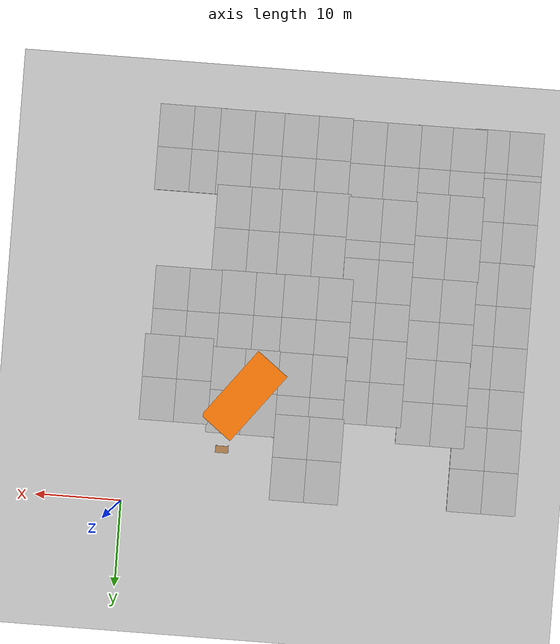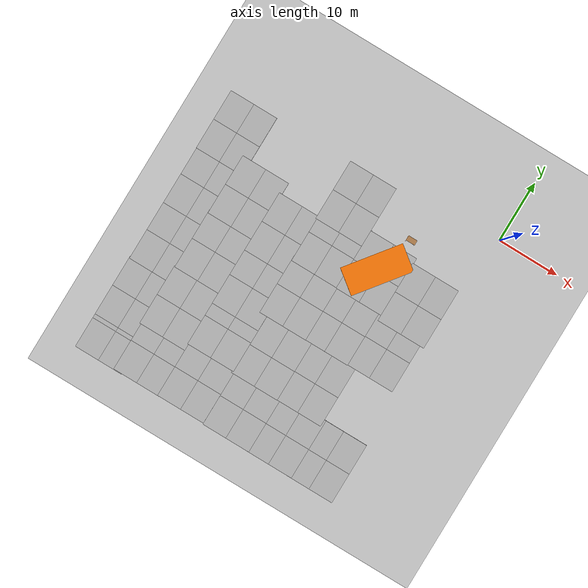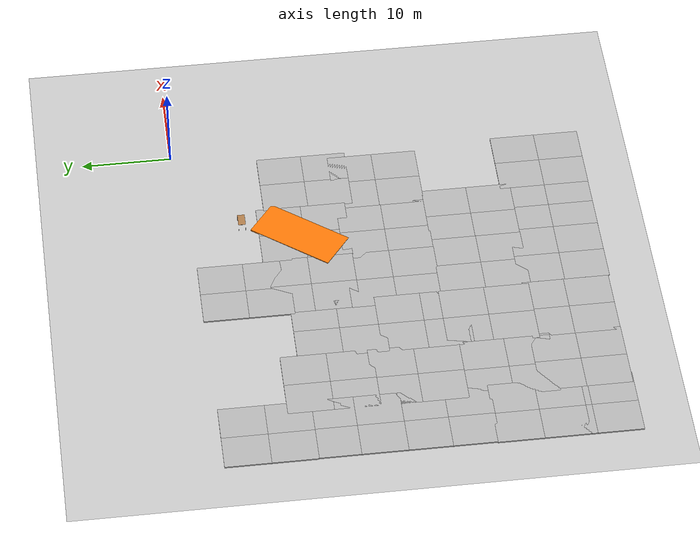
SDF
<sdf version="1.5">
 <world name="default">
  <model name="ground_plane">
   <static>1</static>
   <link name="link">
    <collision name="collision">
     <geometry><plane><normal>0 0 1</normal><size>100 100</size></plane></geometry>
     <surface><friction><ode><mu>100</mu><mu2>50</mu2></ode></friction></surface>
    </collision>
    <visual name="visual">
     <cast_shadows>0</cast_shadows>
     <geometry><plane><normal>0 0 1</normal><size>100 100</size></plane></geometry>
     <material>
      <script><uri>file://media/materials/scripts/gazebo.material</uri><name>Gazebo/Grey</name></script>
     </material>
    </visual>
   </link>
  </model>
  <model name="mud_box_1">
   <static>1</static>
   <link name="link">
    <collision name="collision"><geometry><box><size>8 10 0.2</size></box></geometry></collision>
    <visual name="visual_1">
     <pose>-2 2.5 0 0 -0 0</pose>
     <cast_shadows>0</cast_shadows>
     <geometry><box><size>4 5 0.2</size></box></geometry>
     <material>
      <script>
       <uri>model://mud_box/materials/scripts</uri>
       <uri>model://mud_box/materials/textures</uri>
       <name>vrc/mud</name>
      </script>
     </material>
    </visual>
    <visual name="visual_2">
     <pose>2 2.5 0 0 -0 0</pose>
     <cast_shadows>0</cast_shadows>
     <geometry><box><size>4 5 0.2</size></box></geometry>
     <material>
      <script>
       <uri>model://mud_box/materials/scripts</uri>
       <uri>model://mud_box/materials/textures</uri>
       <name>vrc/mud</name>
      </script>
     </material>
    </visual>
    <visual name="visual_3">
     <pose>2 -2.5 0 0 -0 0</pose>
     <cast_shadows>0</cast_shadows>
     <geometry><box><size>4 5 0.2</size></box></geometry>
     <material>
      <script>
       <uri>model://mud_box/materials/scripts</uri>
       <uri>model://mud_box/materials/textures</uri>
       <name>vrc/mud</name>
      </script>
     </material>
    </visual>
    <visual name="visual_4">
     <pose>-2 -2.5 0 0 -0 0</pose>
     <cast_shadows>0</cast_shadows>
     <geometry><box><size>4 5 0.2</size></box></geometry>
     <material>
      <script>
       <uri>model://mud_box/materials/scripts</uri>
       <uri>model://mud_box/materials/textures</uri>
       <name>vrc/mud</name>
      </script>
     </material>
    </visual>
   </link>
   <pose>-5.37597 -14.6349 0 0 -0 0</pose>
  </model>
  <model name="mud_box_9">
   <static>1</static>
   <link name="link">
    <collision name="collision"><geometry><box><size>8 10 0.2</size></box></geometry></collision>
    <visual name="visual_1">
     <pose>-2 2.5 0 0 -0 0</pose>
     <cast_shadows>0</cast_shadows>
     <geometry><box><size>4 5 0.2</size></box></geometry>
     <material>
      <script>
       <uri>model://mud_box/materials/scripts</uri>
       <uri>model://mud_box/materials/textures</uri>
       <name>vrc/mud</name>
      </script>
     </material>
    </visual>
    <visual name="visual_2">
     <pose>2 2.5 0 0 -0 0</pose>
     <cast_shadows>0</cast_shadows>
     <geometry><box><size>4 5 0.2</size></box></geometry>
     <material>
      <script>
       <uri>model://mud_box/materials/scripts</uri>
       <uri>model://mud_box/materials/textures</uri>
       <name>vrc/mud</name>
      </script>
     </material>
    </visual>
    <visual name="visual_3">
     <pose>2 -2.5 0 0 -0 0</pose>
     <cast_shadows>0</cast_shadows>
     <geometry><box><size>4 5 0.2</size></box></geometry>
     <material>
      <script>
       <uri>model://mud_box/materials/scripts</uri>
       <uri>model://mud_box/materials/textures</uri>
       <name>vrc/mud</name>
      </script>
     </material>
    </visual>
    <visual name="visual_4">
     <pose>-2 -2.5 0 0 -0 0</pose>
     <cast_shadows>0</cast_shadows>
     <geometry><box><size>4 5 0.2</size></box></geometry>
     <material>
      <script>
       <uri>model://mud_box/materials/scripts</uri>
       <uri>model://mud_box/materials/textures</uri>
       <name>vrc/mud</name>
      </script>
     </material>
    </visual>
   </link>
   <pose>-13.1885 -13.7453 0 0 -0 0</pose>
  </model>
  <model name="wall_1">
   <pose>-11.618 -14.6108 0.054009 -0.653823 -1.56052 7.4e-05</pose>
   <link name="Wall_0">
    <collision name="Wall_0_Collision">
     <geometry><box><size>10 0.15 4.5</size></box></geometry>
     <pose>0 0 2.25 0 -0 0</pose>
    </collision>
    <visual name="Wall_0_Visual">
     <pose>0 0 2.25 0 -0 0</pose>
     <geometry><box><size>10 0.15 4.5</size></box></geometry>
     <material>
      <script>
       <uri>model://wall/materials/scripts</uri>
       <uri>model://wall/materials/textures</uri>
       <name>Wall/NiceWall</name>
      </script>
      <ambient>0.996078 0.47451 0.0196078 1</ambient>
     </material>
    </visual>
    <pose>0 -0 0 0 0 -1.5708</pose>
   </link>
   <static>1</static>
  </model>
  <model name="table">
   <static>1</static>
   <link name="link">
    <collision name="surface">
     <pose>0 0 1 0 -0 0</pose>
     <geometry><box><size>1.5 0.8 0.03</size></box></geometry>
     <surface><friction><ode><mu>0.6</mu><mu2>0.6</mu2></ode></friction></surface>
    </collision>
    <visual name="visual1">
     <pose>0 0 1 0 -0 0</pose>
     <geometry><box><size>1.5 0.8 0.03</size></box></geometry>
     <material>
      <script><uri>file://media/materials/scripts/gazebo.material</uri><name>Gazebo/Wood</name></script>
     </material>
    </visual>
    <collision name="front_left_leg">
     <pose>0.68 0.38 0.5 0 -0 0</pose>
     <geometry><cylinder><radius>0.02</radius><length>1</length></cylinder></geometry>
    </collision>
    <visual name="front_left_leg">
     <pose>0.68 0.38 0.5 0 -0 0</pose>
     <geometry><cylinder><radius>0.02</radius><length>1</length></cylinder></geometry>
     <material>
      <script><uri>file://media/materials/scripts/gazebo.material</uri><name>Gazebo/Grey</name></script>
     </material>
    </visual>
    <collision name="front_right_leg">
     <pose>0.68 -0.38 0.5 0 -0 0</pose>
     <geometry><cylinder><radius>0.02</radius><length>1</length></cylinder></geometry>
    </collision>
    <visual name="front_right_leg">
     <pose>0.68 -0.38 0.5 0 -0 0</pose>
     <geometry><cylinder><radius>0.02</radius><length>1</length></cylinder></geometry>
     <material>
      <script><uri>file://media/materials/scripts/gazebo.material</uri><name>Gazebo/Grey</name></script>
     </material>
    </visual>
    <collision name="back_right_leg">
     <pose>-0.68 -0.38 0.5 0 -0 0</pose>
     <geometry><cylinder><radius>0.02</radius><length>1</length></cylinder></geometry>
    </collision>
    <visual name="back_right_leg">
     <pose>-0.68 -0.38 0.5 0 -0 0</pose>
     <geometry><cylinder><radius>0.02</radius><length>1</length></cylinder></geometry>
     <material>
      <script><uri>file://media/materials/scripts/gazebo.material</uri><name>Gazebo/Grey</name></script>
     </material>
    </visual>
    <collision name="back_left_leg">
     <pose>-0.68 0.38 0.5 0 -0 0</pose>
     <geometry><cylinder><radius>0.02</radius><length>1</length></cylinder></geometry>
    </collision>
    <visual name="back_left_leg">
     <pose>-0.68 0.38 0.5 0 -0 0</pose>
     <geometry><cylinder><radius>0.02</radius><length>1</length></cylinder></geometry>
     <material>
      <script><uri>file://media/materials/scripts/gazebo.material</uri><name>Gazebo/Grey</name></script>
     </material>
    </visual>
   </link>
   <pose>-11.3262 -6.97566 0 0 -0 0</pose>
  </model>
  <model name="mud_box_17">
   <static>1</static>
   <link name="link">
    <collision name="collision"><geometry><box><size>8 10 0.2</size></box></geometry></collision>
    <visual name="visual_1">
     <pose>-2 2.5 0 0 -0 0</pose>
     <cast_shadows>0</cast_shadows>
     <geometry><box><size>4 5 0.2</size></box></geometry>
     <material>
      <script>
       <uri>model://mud_box/materials/scripts</uri>
       <uri>model://mud_box/materials/textures</uri>
       <name>vrc/mud</name>
      </script>
     </material>
    </visual>
    <visual name="visual_2">
     <pose>2 2.5 0 0 -0 0</pose>
     <cast_shadows>0</cast_shadows>
     <geometry><box><size>4 5 0.2</size></box></geometry>
     <material>
      <script>
       <uri>model://mud_box/materials/scripts</uri>
       <uri>model://mud_box/materials/textures</uri>
       <name>vrc/mud</name>
      </script>
     </material>
    </visual>
    <visual name="visual_3">
     <pose>2 -2.5 0 0 -0 0</pose>
     <cast_shadows>0</cast_shadows>
     <geometry><box><size>4 5 0.2</size></box></geometry>
     <material>
      <script>
       <uri>model://mud_box/materials/scripts</uri>
       <uri>model://mud_box/materials/textures</uri>
       <name>vrc/mud</name>
      </script>
     </material>
    </visual>
    <visual name="visual_4">
     <pose>-2 -2.5 0 0 -0 0</pose>
     <cast_shadows>0</cast_shadows>
     <geometry><box><size>4 5 0.2</size></box></geometry>
     <material>
      <script>
       <uri>model://mud_box/materials/scripts</uri>
       <uri>model://mud_box/materials/textures</uri>
       <name>vrc/mud</name>
      </script>
     </material>
    </visual>
   </link>
   <pose>-21.1882 -6.44237 0 0 -0 0</pose>
  </model>
  <model name="mud_box_18">
   <static>1</static>
   <link name="link">
    <collision name="collision"><geometry><box><size>8 10 0.2</size></box></geometry></collision>
    <visual name="visual_1">
     <pose>-2 2.5 0 0 -0 0</pose>
     <cast_shadows>0</cast_shadows>
     <geometry><box><size>4 5 0.2</size></box></geometry>
     <material>
      <script>
       <uri>model://mud_box/materials/scripts</uri>
       <uri>model://mud_box/materials/textures</uri>
       <name>vrc/mud</name>
      </script>
     </material>
    </visual>
    <visual name="visual_2">
     <pose>2 2.5 0 0 -0 0</pose>
     <cast_shadows>0</cast_shadows>
     <geometry><box><size>4 5 0.2</size></box></geometry>
     <material>
      <script>
       <uri>model://mud_box/materials/scripts</uri>
       <uri>model://mud_box/materials/textures</uri>
       <name>vrc/mud</name>
      </script>
     </material>
    </visual>
    <visual name="visual_3">
     <pose>2 -2.5 0 0 -0 0</pose>
     <cast_shadows>0</cast_shadows>
     <geometry><box><size>4 5 0.2</size></box></geometry>
     <material>
      <script>
       <uri>model://mud_box/materials/scripts</uri>
       <uri>model://mud_box/materials/textures</uri>
       <name>vrc/mud</name>
      </script>
     </material>
    </visual>
    <visual name="visual_4">
     <pose>-2 -2.5 0 0 -0 0</pose>
     <cast_shadows>0</cast_shadows>
     <geometry><box><size>4 5 0.2</size></box></geometry>
     <material>
      <script>
       <uri>model://mud_box/materials/scripts</uri>
       <uri>model://mud_box/materials/textures</uri>
       <name>vrc/mud</name>
      </script>
     </material>
    </visual>
   </link>
   <pose>-20.9947 -13.6813 0 0 -0 0</pose>
  </model>
  <model name="mud_box_34">
   <static>1</static>
   <link name="link">
    <collision name="collision"><geometry><box><size>8 10 0.2</size></box></geometry></collision>
    <visual name="visual_1">
     <pose>-2 2.5 0 0 -0 0</pose>
     <cast_shadows>0</cast_shadows>
     <geometry><box><size>4 5 0.2</size></box></geometry>
     <material>
      <script>
       <uri>model://mud_box/materials/scripts</uri>
       <uri>model://mud_box/materials/textures</uri>
       <name>vrc/mud</name>
      </script>
     </material>
    </visual>
    <visual name="visual_2">
     <pose>2 2.5 0 0 -0 0</pose>
     <cast_shadows>0</cast_shadows>
     <geometry><box><size>4 5 0.2</size></box></geometry>
     <material>
      <script>
       <uri>model://mud_box/materials/scripts</uri>
       <uri>model://mud_box/materials/textures</uri>
       <name>vrc/mud</name>
      </script>
     </material>
    </visual>
    <visual name="visual_3">
     <pose>2 -2.5 0 0 -0 0</pose>
     <cast_shadows>0</cast_shadows>
     <geometry><box><size>4 5 0.2</size></box></geometry>
     <material>
      <script>
       <uri>model://mud_box/materials/scripts</uri>
       <uri>model://mud_box/materials/textures</uri>
       <name>vrc/mud</name>
      </script>
     </material>
    </visual>
    <visual name="visual_4">
     <pose>-2 -2.5 0 0 -0 0</pose>
     <cast_shadows>0</cast_shadows>
     <geometry><box><size>4 5 0.2</size></box></geometry>
     <material>
      <script>
       <uri>model://mud_box/materials/scripts</uri>
       <uri>model://mud_box/materials/textures</uri>
       <name>vrc/mud</name>
      </script>
     </material>
    </visual>
   </link>
   <pose>-21.0368 -22.7308 0 0 -0 0</pose>
  </model>
  <model name="mud_box_35">
   <static>1</static>
   <link name="link">
    <collision name="collision"><geometry><box><size>8 10 0.2</size></box></geometry></collision>
    <visual name="visual_1">
     <pose>-2 2.5 0 0 -0 0</pose>
     <cast_shadows>0</cast_shadows>
     <geometry><box><size>4 5 0.2</size></box></geometry>
     <material>
      <script>
       <uri>model://mud_box/materials/scripts</uri>
       <uri>model://mud_box/materials/textures</uri>
       <name>vrc/mud</name>
      </script>
     </material>
    </visual>
    <visual name="visual_2">
     <pose>2 2.5 0 0 -0 0</pose>
     <cast_shadows>0</cast_shadows>
     <geometry><box><size>4 5 0.2</size></box></geometry>
     <material>
      <script>
       <uri>model://mud_box/materials/scripts</uri>
       <uri>model://mud_box/materials/textures</uri>
       <name>vrc/mud</name>
      </script>
     </material>
    </visual>
    <visual name="visual_3">
     <pose>2 -2.5 0 0 -0 0</pose>
     <cast_shadows>0</cast_shadows>
     <geometry><box><size>4 5 0.2</size></box></geometry>
     <material>
      <script>
       <uri>model://mud_box/materials/scripts</uri>
       <uri>model://mud_box/materials/textures</uri>
       <name>vrc/mud</name>
      </script>
     </material>
    </visual>
    <visual name="visual_4">
     <pose>-2 -2.5 0 0 -0 0</pose>
     <cast_shadows>0</cast_shadows>
     <geometry><box><size>4 5 0.2</size></box></geometry>
     <material>
      <script>
       <uri>model://mud_box/materials/scripts</uri>
       <uri>model://mud_box/materials/textures</uri>
       <name>vrc/mud</name>
      </script>
     </material>
    </visual>
   </link>
   <pose>-13.7492 -22.6999 0 0 -0 0</pose>
  </model>
  <model name="mud_box_36">
   <static>1</static>
   <link name="link">
    <collision name="collision"><geometry><box><size>8 10 0.2</size></box></geometry></collision>
    <visual name="visual_1">
     <pose>-2 2.5 0 0 -0 0</pose>
     <cast_shadows>0</cast_shadows>
     <geometry><box><size>4 5 0.2</size></box></geometry>
     <material>
      <script>
       <uri>model://mud_box/materials/scripts</uri>
       <uri>model://mud_box/materials/textures</uri>
       <name>vrc/mud</name>
      </script>
     </material>
    </visual>
    <visual name="visual_2">
     <pose>2 2.5 0 0 -0 0</pose>
     <cast_shadows>0</cast_shadows>
     <geometry><box><size>4 5 0.2</size></box></geometry>
     <material>
      <script>
       <uri>model://mud_box/materials/scripts</uri>
       <uri>model://mud_box/materials/textures</uri>
       <name>vrc/mud</name>
      </script>
     </material>
    </visual>
    <visual name="visual_3">
     <pose>2 -2.5 0 0 -0 0</pose>
     <cast_shadows>0</cast_shadows>
     <geometry><box><size>4 5 0.2</size></box></geometry>
     <material>
      <script>
       <uri>model://mud_box/materials/scripts</uri>
       <uri>model://mud_box/materials/textures</uri>
       <name>vrc/mud</name>
      </script>
     </material>
    </visual>
    <visual name="visual_4">
     <pose>-2 -2.5 0 0 -0 0</pose>
     <cast_shadows>0</cast_shadows>
     <geometry><box><size>4 5 0.2</size></box></geometry>
     <material>
      <script>
       <uri>model://mud_box/materials/scripts</uri>
       <uri>model://mud_box/materials/textures</uri>
       <name>vrc/mud</name>
      </script>
     </material>
    </visual>
   </link>
   <pose>-6.00686 -22.6178 0 0 -0 0</pose>
  </model>
  <model name="mud_box_45">
   <static>1</static>
   <link name="link">
    <collision name="collision"><geometry><box><size>8 10 0.2</size></box></geometry></collision>
    <visual name="visual_1">
     <pose>-2 2.5 0 0 -0 0</pose>
     <cast_shadows>0</cast_shadows>
     <geometry><box><size>4 5 0.2</size></box></geometry>
     <material>
      <script>
       <uri>model://mud_box/materials/scripts</uri>
       <uri>model://mud_box/materials/textures</uri>
       <name>vrc/mud</name>
      </script>
     </material>
    </visual>
    <visual name="visual_2">
     <pose>2 2.5 0 0 -0 0</pose>
     <cast_shadows>0</cast_shadows>
     <geometry><box><size>4 5 0.2</size></box></geometry>
     <material>
      <script>
       <uri>model://mud_box/materials/scripts</uri>
       <uri>model://mud_box/materials/textures</uri>
       <name>vrc/mud</name>
      </script>
     </material>
    </visual>
    <visual name="visual_3">
     <pose>2 -2.5 0 0 -0 0</pose>
     <cast_shadows>0</cast_shadows>
     <geometry><box><size>4 5 0.2</size></box></geometry>
     <material>
      <script>
       <uri>model://mud_box/materials/scripts</uri>
       <uri>model://mud_box/materials/textures</uri>
       <name>vrc/mud</name>
      </script>
     </material>
    </visual>
    <visual name="visual_4">
     <pose>-2 -2.5 0 0 -0 0</pose>
     <cast_shadows>0</cast_shadows>
     <geometry><box><size>4 5 0.2</size></box></geometry>
     <material>
      <script>
       <uri>model://mud_box/materials/scripts</uri>
       <uri>model://mud_box/materials/textures</uri>
       <name>vrc/mud</name>
      </script>
     </material>
    </visual>
   </link>
   <pose>-27.7922 -15.9741 0 0 -0 0</pose>
  </model>
  <model name="mud_box_46">
   <static>1</static>
   <link name="link">
    <collision name="collision"><geometry><box><size>8 10 0.2</size></box></geometry></collision>
    <visual name="visual_1">
     <pose>-2 2.5 0 0 -0 0</pose>
     <cast_shadows>0</cast_shadows>
     <geometry><box><size>4 5 0.2</size></box></geometry>
     <material>
      <script>
       <uri>model://mud_box/materials/scripts</uri>
       <uri>model://mud_box/materials/textures</uri>
       <name>vrc/mud</name>
      </script>
     </material>
    </visual>
    <visual name="visual_2">
     <pose>2 2.5 0 0 -0 0</pose>
     <cast_shadows>0</cast_shadows>
     <geometry><box><size>4 5 0.2</size></box></geometry>
     <material>
      <script>
       <uri>model://mud_box/materials/scripts</uri>
       <uri>model://mud_box/materials/textures</uri>
       <name>vrc/mud</name>
      </script>
     </material>
    </visual>
    <visual name="visual_3">
     <pose>2 -2.5 0 0 -0 0</pose>
     <cast_shadows>0</cast_shadows>
     <geometry><box><size>4 5 0.2</size></box></geometry>
     <material>
      <script>
       <uri>model://mud_box/materials/scripts</uri>
       <uri>model://mud_box/materials/textures</uri>
       <name>vrc/mud</name>
      </script>
     </material>
    </visual>
    <visual name="visual_4">
     <pose>-2 -2.5 0 0 -0 0</pose>
     <cast_shadows>0</cast_shadows>
     <geometry><box><size>4 5 0.2</size></box></geometry>
     <material>
      <script>
       <uri>model://mud_box/materials/scripts</uri>
       <uri>model://mud_box/materials/textures</uri>
       <name>vrc/mud</name>
      </script>
     </material>
    </visual>
   </link>
   <pose>-27.7934 -25.2342 0 0 -0 0</pose>
  </model>
  <model name="mud_box_47">
   <static>1</static>
   <link name="link">
    <collision name="collision"><geometry><box><size>8 10 0.2</size></box></geometry></collision>
    <visual name="visual_1">
     <pose>-2 2.5 0 0 -0 0</pose>
     <cast_shadows>0</cast_shadows>
     <geometry><box><size>4 5 0.2</size></box></geometry>
     <material>
      <script>
       <uri>model://mud_box/materials/scripts</uri>
       <uri>model://mud_box/materials/textures</uri>
       <name>vrc/mud</name>
      </script>
     </material>
    </visual>
    <visual name="visual_2">
     <pose>2 2.5 0 0 -0 0</pose>
     <cast_shadows>0</cast_shadows>
     <geometry><box><size>4 5 0.2</size></box></geometry>
     <material>
      <script>
       <uri>model://mud_box/materials/scripts</uri>
       <uri>model://mud_box/materials/textures</uri>
       <name>vrc/mud</name>
      </script>
     </material>
    </visual>
    <visual name="visual_3">
     <pose>2 -2.5 0 0 -0 0</pose>
     <cast_shadows>0</cast_shadows>
     <geometry><box><size>4 5 0.2</size></box></geometry>
     <material>
      <script>
       <uri>model://mud_box/materials/scripts</uri>
       <uri>model://mud_box/materials/textures</uri>
       <name>vrc/mud</name>
      </script>
     </material>
    </visual>
    <visual name="visual_4">
     <pose>-2 -2.5 0 0 -0 0</pose>
     <cast_shadows>0</cast_shadows>
     <geometry><box><size>4 5 0.2</size></box></geometry>
     <material>
      <script>
       <uri>model://mud_box/materials/scripts</uri>
       <uri>model://mud_box/materials/textures</uri>
       <name>vrc/mud</name>
      </script>
     </material>
    </visual>
   </link>
   <pose>-27.7731 -32.3247 0 0 -0 0</pose>
  </model>
  <model name="mud_box_48">
   <static>1</static>
   <link name="link">
    <collision name="collision"><geometry><box><size>8 10 0.2</size></box></geometry></collision>
    <visual name="visual_1">
     <pose>-2 2.5 0 0 -0 0</pose>
     <cast_shadows>0</cast_shadows>
     <geometry><box><size>4 5 0.2</size></box></geometry>
     <material>
      <script>
       <uri>model://mud_box/materials/scripts</uri>
       <uri>model://mud_box/materials/textures</uri>
       <name>vrc/mud</name>
      </script>
     </material>
    </visual>
    <visual name="visual_2">
     <pose>2 2.5 0 0 -0 0</pose>
     <cast_shadows>0</cast_shadows>
     <geometry><box><size>4 5 0.2</size></box></geometry>
     <material>
      <script>
       <uri>model://mud_box/materials/scripts</uri>
       <uri>model://mud_box/materials/textures</uri>
       <name>vrc/mud</name>
      </script>
     </material>
    </visual>
    <visual name="visual_3">
     <pose>2 -2.5 0 0 -0 0</pose>
     <cast_shadows>0</cast_shadows>
     <geometry><box><size>4 5 0.2</size></box></geometry>
     <material>
      <script>
       <uri>model://mud_box/materials/scripts</uri>
       <uri>model://mud_box/materials/textures</uri>
       <name>vrc/mud</name>
      </script>
     </material>
    </visual>
    <visual name="visual_4">
     <pose>-2 -2.5 0 0 -0 0</pose>
     <cast_shadows>0</cast_shadows>
     <geometry><box><size>4 5 0.2</size></box></geometry>
     <material>
      <script>
       <uri>model://mud_box/materials/scripts</uri>
       <uri>model://mud_box/materials/textures</uri>
       <name>vrc/mud</name>
      </script>
     </material>
    </visual>
   </link>
   <pose>-19.9979 -32.5855 0 0 -0 0</pose>
  </model>
  <model name="mud_box_49">
   <static>1</static>
   <link name="link">
    <collision name="collision"><geometry><box><size>8 10 0.2</size></box></geometry></collision>
    <visual name="visual_1">
     <pose>-2 2.5 0 0 -0 0</pose>
     <cast_shadows>0</cast_shadows>
     <geometry><box><size>4 5 0.2</size></box></geometry>
     <material>
      <script>
       <uri>model://mud_box/materials/scripts</uri>
       <uri>model://mud_box/materials/textures</uri>
       <name>vrc/mud</name>
      </script>
     </material>
    </visual>
    <visual name="visual_2">
     <pose>2 2.5 0 0 -0 0</pose>
     <cast_shadows>0</cast_shadows>
     <geometry><box><size>4 5 0.2</size></box></geometry>
     <material>
      <script>
       <uri>model://mud_box/materials/scripts</uri>
       <uri>model://mud_box/materials/textures</uri>
       <name>vrc/mud</name>
      </script>
     </material>
    </visual>
    <visual name="visual_3">
     <pose>2 -2.5 0 0 -0 0</pose>
     <cast_shadows>0</cast_shadows>
     <geometry><box><size>4 5 0.2</size></box></geometry>
     <material>
      <script>
       <uri>model://mud_box/materials/scripts</uri>
       <uri>model://mud_box/materials/textures</uri>
       <name>vrc/mud</name>
      </script>
     </material>
    </visual>
    <visual name="visual_4">
     <pose>-2 -2.5 0 0 -0 0</pose>
     <cast_shadows>0</cast_shadows>
     <geometry><box><size>4 5 0.2</size></box></geometry>
     <material>
      <script>
       <uri>model://mud_box/materials/scripts</uri>
       <uri>model://mud_box/materials/textures</uri>
       <name>vrc/mud</name>
      </script>
     </material>
    </visual>
   </link>
   <pose>-12.4535 -32.5469 0 0 -0 0</pose>
  </model>
  <model name="mud_box_71">
   <static>1</static>
   <link name="link">
    <collision name="collision"><geometry><box><size>8 10 0.2</size></box></geometry></collision>
    <visual name="visual_1">
     <pose>-2 2.5 0 0 -0 0</pose>
     <cast_shadows>0</cast_shadows>
     <geometry><box><size>4 5 0.2</size></box></geometry>
     <material>
      <script>
       <uri>model://mud_box/materials/scripts</uri>
       <uri>model://mud_box/materials/textures</uri>
       <name>vrc/mud</name>
      </script>
     </material>
    </visual>
    <visual name="visual_2">
     <pose>2 2.5 0 0 -0 0</pose>
     <cast_shadows>0</cast_shadows>
     <geometry><box><size>4 5 0.2</size></box></geometry>
     <material>
      <script>
       <uri>model://mud_box/materials/scripts</uri>
       <uri>model://mud_box/materials/textures</uri>
       <name>vrc/mud</name>
      </script>
     </material>
    </visual>
    <visual name="visual_3">
     <pose>2 -2.5 0 0 -0 0</pose>
     <cast_shadows>0</cast_shadows>
     <geometry><box><size>4 5 0.2</size></box></geometry>
     <material>
      <script>
       <uri>model://mud_box/materials/scripts</uri>
       <uri>model://mud_box/materials/textures</uri>
       <name>vrc/mud</name>
      </script>
     </material>
    </visual>
    <visual name="visual_4">
     <pose>-2 -2.5 0 0 -0 0</pose>
     <cast_shadows>0</cast_shadows>
     <geometry><box><size>4 5 0.2</size></box></geometry>
     <material>
      <script>
       <uri>model://mud_box/materials/scripts</uri>
       <uri>model://mud_box/materials/textures</uri>
       <name>vrc/mud</name>
      </script>
     </material>
    </visual>
   </link>
   <pose>-27.6102 -41.2163 0 0 -0 0</pose>
  </model>
  <model name="mud_box_72">
   <static>1</static>
   <link name="link">
    <collision name="collision"><geometry><box><size>8 10 0.2</size></box></geometry></collision>
    <visual name="visual_1">
     <pose>-2 2.5 0 0 -0 0</pose>
     <cast_shadows>0</cast_shadows>
     <geometry><box><size>4 5 0.2</size></box></geometry>
     <material>
      <script>
       <uri>model://mud_box/materials/scripts</uri>
       <uri>model://mud_box/materials/textures</uri>
       <name>vrc/mud</name>
      </script>
     </material>
    </visual>
    <visual name="visual_2">
     <pose>2 2.5 0 0 -0 0</pose>
     <cast_shadows>0</cast_shadows>
     <geometry><box><size>4 5 0.2</size></box></geometry>
     <material>
      <script>
       <uri>model://mud_box/materials/scripts</uri>
       <uri>model://mud_box/materials/textures</uri>
       <name>vrc/mud</name>
      </script>
     </material>
    </visual>
    <visual name="visual_3">
     <pose>2 -2.5 0 0 -0 0</pose>
     <cast_shadows>0</cast_shadows>
     <geometry><box><size>4 5 0.2</size></box></geometry>
     <material>
      <script>
       <uri>model://mud_box/materials/scripts</uri>
       <uri>model://mud_box/materials/textures</uri>
       <name>vrc/mud</name>
      </script>
     </material>
    </visual>
    <visual name="visual_4">
     <pose>-2 -2.5 0 0 -0 0</pose>
     <cast_shadows>0</cast_shadows>
     <geometry><box><size>4 5 0.2</size></box></geometry>
     <material>
      <script>
       <uri>model://mud_box/materials/scripts</uri>
       <uri>model://mud_box/materials/textures</uri>
       <name>vrc/mud</name>
      </script>
     </material>
    </visual>
   </link>
   <pose>-19.6086 -41.3766 0 0 -0 0</pose>
  </model>
  <model name="mud_box_73">
   <static>1</static>
   <link name="link">
    <collision name="collision"><geometry><box><size>8 10 0.2</size></box></geometry></collision>
    <visual name="visual_1">
     <pose>-2 2.5 0 0 -0 0</pose>
     <cast_shadows>0</cast_shadows>
     <geometry><box><size>4 5 0.2</size></box></geometry>
     <material>
      <script>
       <uri>model://mud_box/materials/scripts</uri>
       <uri>model://mud_box/materials/textures</uri>
       <name>vrc/mud</name>
      </script>
     </material>
    </visual>
    <visual name="visual_2">
     <pose>2 2.5 0 0 -0 0</pose>
     <cast_shadows>0</cast_shadows>
     <geometry><box><size>4 5 0.2</size></box></geometry>
     <material>
      <script>
       <uri>model://mud_box/materials/scripts</uri>
       <uri>model://mud_box/materials/textures</uri>
       <name>vrc/mud</name>
      </script>
     </material>
    </visual>
    <visual name="visual_3">
     <pose>2 -2.5 0 0 -0 0</pose>
     <cast_shadows>0</cast_shadows>
     <geometry><box><size>4 5 0.2</size></box></geometry>
     <material>
      <script>
       <uri>model://mud_box/materials/scripts</uri>
       <uri>model://mud_box/materials/textures</uri>
       <name>vrc/mud</name>
      </script>
     </material>
    </visual>
    <visual name="visual_4">
     <pose>-2 -2.5 0 0 -0 0</pose>
     <cast_shadows>0</cast_shadows>
     <geometry><box><size>4 5 0.2</size></box></geometry>
     <material>
      <script>
       <uri>model://mud_box/materials/scripts</uri>
       <uri>model://mud_box/materials/textures</uri>
       <name>vrc/mud</name>
      </script>
     </material>
    </visual>
   </link>
   <pose>-12.1781 -41.3912 0 0 -0 0</pose>
  </model>
  <model name="mud_box_74">
   <static>1</static>
   <link name="link">
    <collision name="collision"><geometry><box><size>8 10 0.2</size></box></geometry></collision>
    <visual name="visual_1">
     <pose>-2 2.5 0 0 -0 0</pose>
     <cast_shadows>0</cast_shadows>
     <geometry><box><size>4 5 0.2</size></box></geometry>
     <material>
      <script>
       <uri>model://mud_box/materials/scripts</uri>
       <uri>model://mud_box/materials/textures</uri>
       <name>vrc/mud</name>
      </script>
     </material>
    </visual>
    <visual name="visual_2">
     <pose>2 2.5 0 0 -0 0</pose>
     <cast_shadows>0</cast_shadows>
     <geometry><box><size>4 5 0.2</size></box></geometry>
     <material>
      <script>
       <uri>model://mud_box/materials/scripts</uri>
       <uri>model://mud_box/materials/textures</uri>
       <name>vrc/mud</name>
      </script>
     </material>
    </visual>
    <visual name="visual_3">
     <pose>2 -2.5 0 0 -0 0</pose>
     <cast_shadows>0</cast_shadows>
     <geometry><box><size>4 5 0.2</size></box></geometry>
     <material>
      <script>
       <uri>model://mud_box/materials/scripts</uri>
       <uri>model://mud_box/materials/textures</uri>
       <name>vrc/mud</name>
      </script>
     </material>
    </visual>
    <visual name="visual_4">
     <pose>-2 -2.5 0 0 -0 0</pose>
     <cast_shadows>0</cast_shadows>
     <geometry><box><size>4 5 0.2</size></box></geometry>
     <material>
      <script>
       <uri>model://mud_box/materials/scripts</uri>
       <uri>model://mud_box/materials/textures</uri>
       <name>vrc/mud</name>
      </script>
     </material>
    </visual>
   </link>
   <pose>-5.10155 -41.4095 0 0 -0 0</pose>
  </model>
  <model name="mud_box_106">
   <static>1</static>
   <link name="link">
    <collision name="collision"><geometry><box><size>8 10 0.2</size></box></geometry></collision>
    <visual name="visual_1">
     <pose>-2 2.5 0 0 -0 0</pose>
     <cast_shadows>0</cast_shadows>
     <geometry><box><size>4 5 0.2</size></box></geometry>
     <material>
      <script>
       <uri>model://mud_box/materials/scripts</uri>
       <uri>model://mud_box/materials/textures</uri>
       <name>vrc/mud</name>
      </script>
     </material>
    </visual>
    <visual name="visual_2">
     <pose>2 2.5 0 0 -0 0</pose>
     <cast_shadows>0</cast_shadows>
     <geometry><box><size>4 5 0.2</size></box></geometry>
     <material>
      <script>
       <uri>model://mud_box/materials/scripts</uri>
       <uri>model://mud_box/materials/textures</uri>
       <name>vrc/mud</name>
      </script>
     </material>
    </visual>
    <visual name="visual_3">
     <pose>2 -2.5 0 0 -0 0</pose>
     <cast_shadows>0</cast_shadows>
     <geometry><box><size>4 5 0.2</size></box></geometry>
     <material>
      <script>
       <uri>model://mud_box/materials/scripts</uri>
       <uri>model://mud_box/materials/textures</uri>
       <name>vrc/mud</name>
      </script>
     </material>
    </visual>
    <visual name="visual_4">
     <pose>-2 -2.5 0 0 -0 0</pose>
     <cast_shadows>0</cast_shadows>
     <geometry><box><size>4 5 0.2</size></box></geometry>
     <material>
      <script>
       <uri>model://mud_box/materials/scripts</uri>
       <uri>model://mud_box/materials/textures</uri>
       <name>vrc/mud</name>
      </script>
     </material>
    </visual>
   </link>
   <pose>-35.3148 -14.0893 0 0 -0 0</pose>
  </model>
  <model name="mud_box_107">
   <static>1</static>
   <link name="link">
    <collision name="collision"><geometry><box><size>8 10 0.2</size></box></geometry></collision>
    <visual name="visual_1">
     <pose>-2 2.5 0 0 -0 0</pose>
     <cast_shadows>0</cast_shadows>
     <geometry><box><size>4 5 0.2</size></box></geometry>
     <material>
      <script>
       <uri>model://mud_box/materials/scripts</uri>
       <uri>model://mud_box/materials/textures</uri>
       <name>vrc/mud</name>
      </script>
     </material>
    </visual>
    <visual name="visual_2">
     <pose>2 2.5 0 0 -0 0</pose>
     <cast_shadows>0</cast_shadows>
     <geometry><box><size>4 5 0.2</size></box></geometry>
     <material>
      <script>
       <uri>model://mud_box/materials/scripts</uri>
       <uri>model://mud_box/materials/textures</uri>
       <name>vrc/mud</name>
      </script>
     </material>
    </visual>
    <visual name="visual_3">
     <pose>2 -2.5 0 0 -0 0</pose>
     <cast_shadows>0</cast_shadows>
     <geometry><box><size>4 5 0.2</size></box></geometry>
     <material>
      <script>
       <uri>model://mud_box/materials/scripts</uri>
       <uri>model://mud_box/materials/textures</uri>
       <name>vrc/mud</name>
      </script>
     </material>
    </visual>
    <visual name="visual_4">
     <pose>-2 -2.5 0 0 -0 0</pose>
     <cast_shadows>0</cast_shadows>
     <geometry><box><size>4 5 0.2</size></box></geometry>
     <material>
      <script>
       <uri>model://mud_box/materials/scripts</uri>
       <uri>model://mud_box/materials/textures</uri>
       <name>vrc/mud</name>
      </script>
     </material>
    </visual>
   </link>
   <pose>-35.3635 -23.5407 0 0 -0 0</pose>
  </model>
  <model name="mud_box_108">
   <static>1</static>
   <link name="link">
    <collision name="collision"><geometry><box><size>8 10 0.2</size></box></geometry></collision>
    <visual name="visual_1">
     <pose>-2 2.5 0 0 -0 0</pose>
     <cast_shadows>0</cast_shadows>
     <geometry><box><size>4 5 0.2</size></box></geometry>
     <material>
      <script>
       <uri>model://mud_box/materials/scripts</uri>
       <uri>model://mud_box/materials/textures</uri>
       <name>vrc/mud</name>
      </script>
     </material>
    </visual>
    <visual name="visual_2">
     <pose>2 2.5 0 0 -0 0</pose>
     <cast_shadows>0</cast_shadows>
     <geometry><box><size>4 5 0.2</size></box></geometry>
     <material>
      <script>
       <uri>model://mud_box/materials/scripts</uri>
       <uri>model://mud_box/materials/textures</uri>
       <name>vrc/mud</name>
      </script>
     </material>
    </visual>
    <visual name="visual_3">
     <pose>2 -2.5 0 0 -0 0</pose>
     <cast_shadows>0</cast_shadows>
     <geometry><box><size>4 5 0.2</size></box></geometry>
     <material>
      <script>
       <uri>model://mud_box/materials/scripts</uri>
       <uri>model://mud_box/materials/textures</uri>
       <name>vrc/mud</name>
      </script>
     </material>
    </visual>
    <visual name="visual_4">
     <pose>-2 -2.5 0 0 -0 0</pose>
     <cast_shadows>0</cast_shadows>
     <geometry><box><size>4 5 0.2</size></box></geometry>
     <material>
      <script>
       <uri>model://mud_box/materials/scripts</uri>
       <uri>model://mud_box/materials/textures</uri>
       <name>vrc/mud</name>
      </script>
     </material>
    </visual>
   </link>
   <pose>-35.4813 -33.3936 0 0 -0 0</pose>
  </model>
  <model name="mud_box_109">
   <static>1</static>
   <link name="link">
    <collision name="collision"><geometry><box><size>8 10 0.2</size></box></geometry></collision>
    <visual name="visual_1">
     <pose>-2 2.5 0 0 -0 0</pose>
     <cast_shadows>0</cast_shadows>
     <geometry><box><size>4 5 0.2</size></box></geometry>
     <material>
      <script>
       <uri>model://mud_box/materials/scripts</uri>
       <uri>model://mud_box/materials/textures</uri>
       <name>vrc/mud</name>
      </script>
     </material>
    </visual>
    <visual name="visual_2">
     <pose>2 2.5 0 0 -0 0</pose>
     <cast_shadows>0</cast_shadows>
     <geometry><box><size>4 5 0.2</size></box></geometry>
     <material>
      <script>
       <uri>model://mud_box/materials/scripts</uri>
       <uri>model://mud_box/materials/textures</uri>
       <name>vrc/mud</name>
      </script>
     </material>
    </visual>
    <visual name="visual_3">
     <pose>2 -2.5 0 0 -0 0</pose>
     <cast_shadows>0</cast_shadows>
     <geometry><box><size>4 5 0.2</size></box></geometry>
     <material>
      <script>
       <uri>model://mud_box/materials/scripts</uri>
       <uri>model://mud_box/materials/textures</uri>
       <name>vrc/mud</name>
      </script>
     </material>
    </visual>
    <visual name="visual_4">
     <pose>-2 -2.5 0 0 -0 0</pose>
     <cast_shadows>0</cast_shadows>
     <geometry><box><size>4 5 0.2</size></box></geometry>
     <material>
      <script>
       <uri>model://mud_box/materials/scripts</uri>
       <uri>model://mud_box/materials/textures</uri>
       <name>vrc/mud</name>
      </script>
     </material>
    </visual>
   </link>
   <pose>-35.2433 -41.2407 0 0 -0 0</pose>
  </model>
  <model name="mud_box_115">
   <static>1</static>
   <link name="link">
    <collision name="collision"><geometry><box><size>8 10 0.2</size></box></geometry></collision>
    <visual name="visual_1">
     <pose>-2 2.5 0 0 -0 0</pose>
     <cast_shadows>0</cast_shadows>
     <geometry><box><size>4 5 0.2</size></box></geometry>
     <material>
      <script>
       <uri>model://mud_box/materials/scripts</uri>
       <uri>model://mud_box/materials/textures</uri>
       <name>vrc/mud</name>
      </script>
     </material>
    </visual>
    <visual name="visual_2">
     <pose>2 2.5 0 0 -0 0</pose>
     <cast_shadows>0</cast_shadows>
     <geometry><box><size>4 5 0.2</size></box></geometry>
     <material>
      <script>
       <uri>model://mud_box/materials/scripts</uri>
       <uri>model://mud_box/materials/textures</uri>
       <name>vrc/mud</name>
      </script>
     </material>
    </visual>
    <visual name="visual_3">
     <pose>2 -2.5 0 0 -0 0</pose>
     <cast_shadows>0</cast_shadows>
     <geometry><box><size>4 5 0.2</size></box></geometry>
     <material>
      <script>
       <uri>model://mud_box/materials/scripts</uri>
       <uri>model://mud_box/materials/textures</uri>
       <name>vrc/mud</name>
      </script>
     </material>
    </visual>
    <visual name="visual_4">
     <pose>-2 -2.5 0 0 -0 0</pose>
     <cast_shadows>0</cast_shadows>
     <geometry><box><size>4 5 0.2</size></box></geometry>
     <material>
      <script>
       <uri>model://mud_box/materials/scripts</uri>
       <uri>model://mud_box/materials/textures</uri>
       <name>vrc/mud</name>
      </script>
     </material>
    </visual>
   </link>
   <pose>-41.85 -6.71546 0 0 -0 0</pose>
  </model>
  <model name="mud_box_116">
   <static>1</static>
   <link name="link">
    <collision name="collision"><geometry><box><size>8 10 0.2</size></box></geometry></collision>
    <visual name="visual_1">
     <pose>-2 2.5 0 0 -0 0</pose>
     <cast_shadows>0</cast_shadows>
     <geometry><box><size>4 5 0.2</size></box></geometry>
     <material>
      <script>
       <uri>model://mud_box/materials/scripts</uri>
       <uri>model://mud_box/materials/textures</uri>
       <name>vrc/mud</name>
      </script>
     </material>
    </visual>
    <visual name="visual_2">
     <pose>2 2.5 0 0 -0 0</pose>
     <cast_shadows>0</cast_shadows>
     <geometry><box><size>4 5 0.2</size></box></geometry>
     <material>
      <script>
       <uri>model://mud_box/materials/scripts</uri>
       <uri>model://mud_box/materials/textures</uri>
       <name>vrc/mud</name>
      </script>
     </material>
    </visual>
    <visual name="visual_3">
     <pose>2 -2.5 0 0 -0 0</pose>
     <cast_shadows>0</cast_shadows>
     <geometry><box><size>4 5 0.2</size></box></geometry>
     <material>
      <script>
       <uri>model://mud_box/materials/scripts</uri>
       <uri>model://mud_box/materials/textures</uri>
       <name>vrc/mud</name>
      </script>
     </material>
    </visual>
    <visual name="visual_4">
     <pose>-2 -2.5 0 0 -0 0</pose>
     <cast_shadows>0</cast_shadows>
     <geometry><box><size>4 5 0.2</size></box></geometry>
     <material>
      <script>
       <uri>model://mud_box/materials/scripts</uri>
       <uri>model://mud_box/materials/textures</uri>
       <name>vrc/mud</name>
      </script>
     </material>
    </visual>
   </link>
   <pose>-41.7952 -16.2161 0 0 -0 0</pose>
  </model>
  <model name="mud_box_117">
   <static>1</static>
   <link name="link">
    <collision name="collision"><geometry><box><size>8 10 0.2</size></box></geometry></collision>
    <visual name="visual_1">
     <pose>-2 2.5 0 0 -0 0</pose>
     <cast_shadows>0</cast_shadows>
     <geometry><box><size>4 5 0.2</size></box></geometry>
     <material>
      <script>
       <uri>model://mud_box/materials/scripts</uri>
       <uri>model://mud_box/materials/textures</uri>
       <name>vrc/mud</name>
      </script>
     </material>
    </visual>
    <visual name="visual_2">
     <pose>2 2.5 0 0 -0 0</pose>
     <cast_shadows>0</cast_shadows>
     <geometry><box><size>4 5 0.2</size></box></geometry>
     <material>
      <script>
       <uri>model://mud_box/materials/scripts</uri>
       <uri>model://mud_box/materials/textures</uri>
       <name>vrc/mud</name>
      </script>
     </material>
    </visual>
    <visual name="visual_3">
     <pose>2 -2.5 0 0 -0 0</pose>
     <cast_shadows>0</cast_shadows>
     <geometry><box><size>4 5 0.2</size></box></geometry>
     <material>
      <script>
       <uri>model://mud_box/materials/scripts</uri>
       <uri>model://mud_box/materials/textures</uri>
       <name>vrc/mud</name>
      </script>
     </material>
    </visual>
    <visual name="visual_4">
     <pose>-2 -2.5 0 0 -0 0</pose>
     <cast_shadows>0</cast_shadows>
     <geometry><box><size>4 5 0.2</size></box></geometry>
     <material>
      <script>
       <uri>model://mud_box/materials/scripts</uri>
       <uri>model://mud_box/materials/textures</uri>
       <name>vrc/mud</name>
      </script>
     </material>
    </visual>
   </link>
   <pose>-41.8012 -25.9339 0 0 -0 0</pose>
  </model>
  <model name="mud_box_118">
   <static>1</static>
   <link name="link">
    <collision name="collision"><geometry><box><size>8 10 0.2</size></box></geometry></collision>
    <visual name="visual_1">
     <pose>-2 2.5 0 0 -0 0</pose>
     <cast_shadows>0</cast_shadows>
     <geometry><box><size>4 5 0.2</size></box></geometry>
     <material>
      <script>
       <uri>model://mud_box/materials/scripts</uri>
       <uri>model://mud_box/materials/textures</uri>
       <name>vrc/mud</name>
      </script>
     </material>
    </visual>
    <visual name="visual_2">
     <pose>2 2.5 0 0 -0 0</pose>
     <cast_shadows>0</cast_shadows>
     <geometry><box><size>4 5 0.2</size></box></geometry>
     <material>
      <script>
       <uri>model://mud_box/materials/scripts</uri>
       <uri>model://mud_box/materials/textures</uri>
       <name>vrc/mud</name>
      </script>
     </material>
    </visual>
    <visual name="visual_3">
     <pose>2 -2.5 0 0 -0 0</pose>
     <cast_shadows>0</cast_shadows>
     <geometry><box><size>4 5 0.2</size></box></geometry>
     <material>
      <script>
       <uri>model://mud_box/materials/scripts</uri>
       <uri>model://mud_box/materials/textures</uri>
       <name>vrc/mud</name>
      </script>
     </material>
    </visual>
    <visual name="visual_4">
     <pose>-2 -2.5 0 0 -0 0</pose>
     <cast_shadows>0</cast_shadows>
     <geometry><box><size>4 5 0.2</size></box></geometry>
     <material>
      <script>
       <uri>model://mud_box/materials/scripts</uri>
       <uri>model://mud_box/materials/textures</uri>
       <name>vrc/mud</name>
      </script>
     </material>
    </visual>
   </link>
   <pose>-41.8733 -35.6612 0 0 -0 0</pose>
  </model>
  <model name="mud_box_119">
   <static>1</static>
   <link name="link">
    <collision name="collision"><geometry><box><size>8 10 0.2</size></box></geometry></collision>
    <visual name="visual_1">
     <pose>-2 2.5 0 0 -0 0</pose>
     <cast_shadows>0</cast_shadows>
     <geometry><box><size>4 5 0.2</size></box></geometry>
     <material>
      <script>
       <uri>model://mud_box/materials/scripts</uri>
       <uri>model://mud_box/materials/textures</uri>
       <name>vrc/mud</name>
      </script>
     </material>
    </visual>
    <visual name="visual_2">
     <pose>2 2.5 0 0 -0 0</pose>
     <cast_shadows>0</cast_shadows>
     <geometry><box><size>4 5 0.2</size></box></geometry>
     <material>
      <script>
       <uri>model://mud_box/materials/scripts</uri>
       <uri>model://mud_box/materials/textures</uri>
       <name>vrc/mud</name>
      </script>
     </material>
    </visual>
    <visual name="visual_3">
     <pose>2 -2.5 0 0 -0 0</pose>
     <cast_shadows>0</cast_shadows>
     <geometry><box><size>4 5 0.2</size></box></geometry>
     <material>
      <script>
       <uri>model://mud_box/materials/scripts</uri>
       <uri>model://mud_box/materials/textures</uri>
       <name>vrc/mud</name>
      </script>
     </material>
    </visual>
    <visual name="visual_4">
     <pose>-2 -2.5 0 0 -0 0</pose>
     <cast_shadows>0</cast_shadows>
     <geometry><box><size>4 5 0.2</size></box></geometry>
     <material>
      <script>
       <uri>model://mud_box/materials/scripts</uri>
       <uri>model://mud_box/materials/textures</uri>
       <name>vrc/mud</name>
      </script>
     </material>
    </visual>
   </link>
   <pose>-41.8725 -41.3227 0 0 -0 0</pose>
  </model>
 </world>
</sdf>
